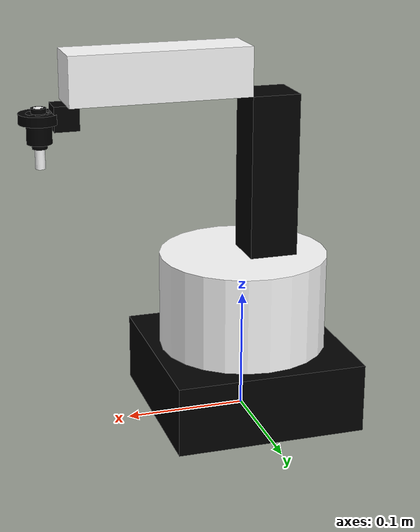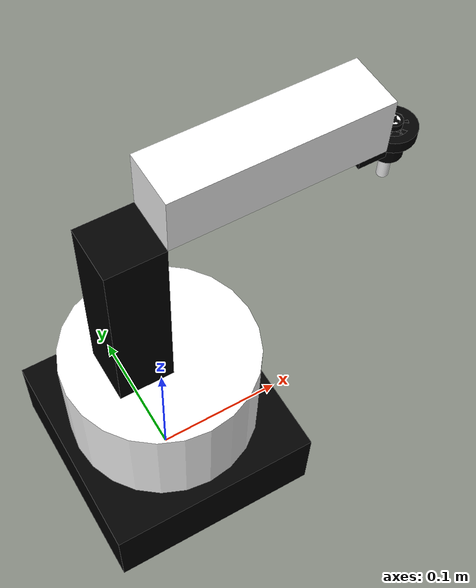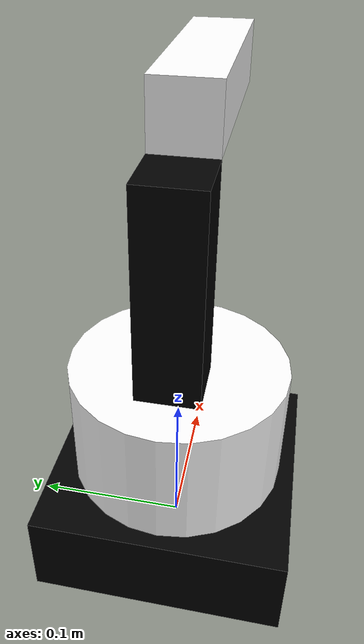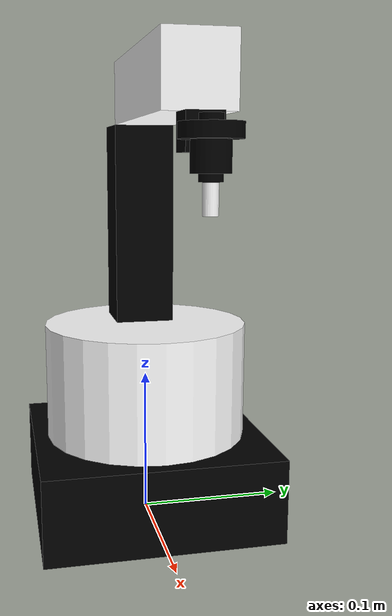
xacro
<?xml version="1.0"?>
<robot name="dobot" xmlns:body="http://playerstage.sourceforge.net/gazebo/xmlschema/#body" xmlns:controller="http://playerstage.sourceforge.net/gazebo/xmlschema/#controller" xmlns:gazebo="http://playerstage.sourceforge.net/gazebo/xmlschema/#gz" xmlns:geom="http://playerstage.sourceforge.net/gazebo/xmlschema/#geom" xmlns:interface="http://playerstage.sourceforge.net/gazebo/xmlschema/#interface" xmlns:joint="http://playerstage.sourceforge.net/gazebo/xmlschema/#joint" xmlns:model="http://playerstage.sourceforge.net/gazebo/xmlschema/#model" xmlns:physics="http://playerstage.sourceforge.net/gazebo/xmlschema/#physics" xmlns:renderable="http://playerstage.sourceforge.net/gazebo/xmlschema/#renderable" xmlns:rendering="http://playerstage.sourceforge.net/gazebo/xmlschema/#rendering" xmlns:sensor="http://playerstage.sourceforge.net/gazebo/xmlschema/#sensor">
	<property name="PI" value="3.1415926535897931"/>
	<property name="joint12_degree" value="0.0"/>
	<property name="joint23_degree" value="0.0"/>
	<property name="joint34_degree" value="90.0"/>
	<material name="blue">
		<color rgba="0 0 1 1"/>
	</material>
	<material name="green">
		<color rgba="0 1 0 1"/>
	</material>
	<material name="red">
		<color rgba="1 0 0 1"/>
	</material>
	<material name="white">
		<color rgba="1 1 1 1"/>
	</material>
	<material name="yellow">
		<color rgba="1 1 0 1"/>
	</material>
	<material name="black">
		<color rgba="0 0 0 1"/>
	</material>

    <gazebo>
         <plugin name="gazebo_ros_control" filename="libgazebo_ros_control.so">
            <robotNamespace>/</robotNamespace>
        </plugin>
    </gazebo>

    <link name="world"/>

	<link name="base_link">
		<visual>
			<geometry>
				<box size="0.158 0.16 0.058"/>//base is 0.16*0.16*0.056</geometry>

			<origin rpy="0 0 0" xyz=" 0 0 0.029"/>
			<material name="black"/>
		</visual>
        <collision>
			<geometry>
				<box size="0.158 0.16 0.058"/>//base is 0.16*0.16*0.056</geometry>

			<origin rpy="0 0 0" xyz="0 0 0.029"/>
		</collision>
   <inertial>
      <mass value="1.0"/>
      <origin rpy="0 0 0" xyz="0 0 0.029"/>
      <inertia ixx="0.0027" iyy="0.0027" izz="0.005" ixy="0" ixz="0" iyz="0"/>
  </inertial>
	</link>

	<link name="link2">
		<visual>
			<geometry>
				<cylinder length="0.08" radius="0.07"/>//link2 is radius 0.07 and height 0.08</geometry>
				<origin rpy="0 0 0" xyz="0 0 0.04"/>//link2 z + 1/2 h_itself

				<material name="white"/></visual>

		<collision>
			<geometry>
				<cylinder length="0.08" radius="0.07"/>//link2 is radius 0.07 and height 0.08</geometry>
				<origin rpy="0 0 0" xyz="0 0 0.04"/>//link2 z + 1/2 h_itself

		</collision>

    <inertial>
      <mass value="1.0"/>
      <origin rpy="0 0 0" xyz="0 0 0.04"/>
      <inertia ixx="0.02146" iyy="0.02146" izz="0.00125" ixy="0" ixz="0" iyz="0"/>
   </inertial>

	</link>

	<link name="link3">
		<visual>
			<geometry>
				<box size="0.04 0.04 0.135"/>//link3 is 0.07*0.04*0.14</geometry>
			<origin rpy="0 0 0" xyz="-0.02 0 0.0675"/>//link3 z + 1/2 h_itself, x - 1/2 l_itself

			<material name="black"/></visual>

		<collision>
			<geometry>
				<box size="0.04 0.04 0.135"/>//link3 is 0.07*0.04*0.14</geometry>
			<origin rpy="0 0 0" xyz="-0.02 0 0.0675"/>//link3 z + 1/2 h_itself, x - 1/2 l_itself

		</collision>

		<inertial>
      <mass value="1.0"/>
      <origin rpy="0 0 0" xyz="-0.02 0 0.0675"/>
      <inertia ixx="0.01396" iyy="0.01396" izz="0.00125" ixy="0" ixz="0" iyz="0"/>
    </inertial>
	</link>

	<link name="link4">
		<visual>
			<geometry>
				<box size="0.04 0.04 0.147"/>//link4 is 0.07*0.04*0.14</geometry>
			<origin rpy="0 0 0" xyz="-0.02 0 0.0735"/>//link4 z + 1/2 h_itself, x - 1/2 l_itself

			<material name="white"/></visual>
			<collision>
			<geometry>
				<box size="0.04 0.04 0.147"/>//link4 is 0.07*0.04*0.14</geometry>
			<origin rpy="0 0 0" xyz="-0.02 0 0.0735"/>//link4 z + 1/2 h_itself, x - 1/2 l_itself

		    </collision>

		    <inertial>
             <mass value="1.0"/>
             <origin rpy="0 0 0" xyz="-0.02 0 0.0735"/>
             <inertia ixx="0.01396" iyy="0.01396" izz="0.00125" ixy="0" ixz="0" iyz="0"/>
           </inertial>
	</link>

	<link name="link5">
		<visual>
			<geometry>
				<box size="0.02 0.02 0.02"/>//link5 is 0.09*0.05*0.07
			</geometry>
			<origin rpy="0 0 0" xyz="0 0 -0.01"/>//link5 z + 1/2 h_itself, x - 1/2 l_itself

			<material name="black"/>
		</visual>

			<collision>
			<geometry>
				<box size="0.02 0.02 0.02"/>//link5 is 0.09*0.05*0.07
			</geometry>
			<origin rpy="0 0 0" xyz="0 0 -0.01"/>//link5 z + 1/2 h_itself, x - 1/2 l_itself

			</collision>

			<inertial>
             <mass value="1.0"/>
             <origin rpy="0 0 0" xyz="0 0 -0.01"/>
             <inertia ixx="0.01396" iyy="0.01396" izz="0.00125" ixy="0" ixz="0" iyz="0"/>
           </inertial>
	</link>

    <link name="link_end">
        <visual>
            <origin rpy="0 3.14 0" xyz="0.02 0 -0.01" />
            <geometry>
                <cylinder length="0.008" radius="0.016"/>
            </geometry>
            <material name="black"/>
        </visual>
        <visual>
            <origin rpy="0 3.14 0" xyz="0.02 0 -0.018" />
            <geometry>
                <cylinder length="0.024" radius="0.01"/>
            </geometry>
            <material name="black"/>
        </visual>
        <visual>
            <origin rpy="0 3.14 0" xyz="0.02 0 -0.018" />
            <geometry>
                <cylinder length="0.032" radius="0.006"/>
            </geometry>
            <material name="black"/>
        </visual>

        <collision>
            <origin rpy="0 3.14 0" xyz="0.02 0 -0.01" />
            <geometry>
                <cylinder length="0.008" radius="0.016"/>
            </geometry>
        </collision>
        <collision>
            <origin rpy="0 3.14 0" xyz="0.02 0 -0.018" />
            <geometry>
                <cylinder length="0.024" radius="0.01"/>
            </geometry>
        </collision>
        <collision>
            <origin rpy="0 3.14 0" xyz="0.02 0 -0.018" />
            <geometry>
                <cylinder length="0.032" radius="0.006"/>
            </geometry>
        </collision>
    </link>

    <link name="link_probe">
        <visual>
            <origin rpy="0 3.14 0" xyz="0.02 0 -0.026" />
            <geometry>
                <cylinder length="0.048" radius="0.004"/>
            </geometry>
            <material name="white"/>
        </visual>

        <collision>
            <origin rpy="0 3.14 0" xyz="0.02 0 -0.026" />
            <geometry>
                <cylinder length="0.048" radius="0.004"/>
            </geometry>
        </collision>
    </link>

    <joint name="joint1_world" type="fixed" >
        <parent link="world"/>
		<child link="base_link"/> </joint>
	<joint name="joint12" type="revolute">
		<axis xyz="0 0 1"/>
		<parent link="base_link"/>
		<child link="link2"/>
		<limit effort="30" lower="-1.4079632679" upper="1.40079632679" velocity="5.58505360638"/>
		<origin rpy="0 0 0" xyz="0 0 0.058"/>//joint12 z + 1/2 h_parent; rpy z is the rotate angle</joint>
	<joint name="joint23" type="revolute">
		<axis xyz="0 1 0"/>
		<parent link="link2"/>
		<child link="link3"/>
		<limit effort="30" lower="0.0" upper="1.305298642" velocity="5.58505360638"/>
		<origin rpy="0 0 0" xyz="0 0 0.08"/>//joint23 z + h_parent;  rpy y is the rotate angle</joint>
	<joint name="joint34" type="revolute">
		<axis xyz="0 1 0"/>
		<parent link="link3"/>
		<child link="link4"/>
		<limit effort="30" lower="-0.16453292519" upper="1.47079632679" velocity="5.58505360638"/>
		<origin rpy="0 1.57079632679 0" xyz="0 0 0.135"/>//joint34 z + h_parent; rpy y is the rotate angle</joint>
	<joint name="joint45" type="revolute">
        <axis xyz="0 1 0"/>
        <parent link="link4"/>
        <child link="link5"/>
		<limit effort="30" lower="-1.57" upper="1.57" velocity="5.58505360638"/>

     <origin xyz="0 0 0.147" rpy="0 -1.57079632679 0" /> //joint34 ; rpy y is the rotate angle
 </joint>

<joint name="joint_end" type ="fixed">
        <origin xyz="0 0 0" rpy="0 0 0"/>
        <parent link="link5"/>
        <child link="link_end"/>
    </joint>

    <joint name="joint_probe" type ="fixed">
        <origin xyz="0 0 0" rpy="0 0 0"/>
        <parent link="link_end"/>
        <child link="link_probe"/>
    </joint>

 <transmission name="trans_joint12">
        <type>transmission_interface/SimpleTransmission</type>
        <joint name="joint12">
            <hardwareInterface>hardware_interface/PositionJointInterface</hardwareInterface>
        </joint>
        <actuator name="joint12_motor">
            <hardwareInterface>hardware_interface/PositionJointInterface</hardwareInterface>
            <mechanicalReduction>1</mechanicalReduction>
        </actuator>
    </transmission>
    <transmission name="trans_joint23">
        <type>transmission_interface/SimpleTransmission</type>
        <joint name="joint23">
            <hardwareInterface>hardware_interface/PositionJointInterface</hardwareInterface>
        </joint>
        <actuator name="joint23_motor">
            <hardwareInterface>hardware_interface/PositionJointInterface</hardwareInterface>
            <mechanicalReduction>1</mechanicalReduction>
        </actuator>
    </transmission>
    <transmission name="trans_joint34">
        <type>transmission_interface/SimpleTransmission</type>
        <joint name="joint34">
            <hardwareInterface>hardware_interface/PositionJointInterface</hardwareInterface>
        </joint>
        <actuator name="joint34_motor">
            <hardwareInterface>hardware_interface/PositionJointInterface</hardwareInterface>
            <mechanicalReduction>1</mechanicalReduction>
        </actuator>
    </transmission>
    <transmission name="trans_joint45">
        <type>transmission_interface/SimpleTransmission</type>
        <joint name="joint45">
            <hardwareInterface>hardware_interface/PositionJointInterface</hardwareInterface>
        </joint>
        <actuator name="joint45_motor">
            <hardwareInterface>hardware_interface/PositionJointInterface</hardwareInterface>
            <mechanicalReduction>1</mechanicalReduction>
        </actuator>
    </transmission>

</robot>
